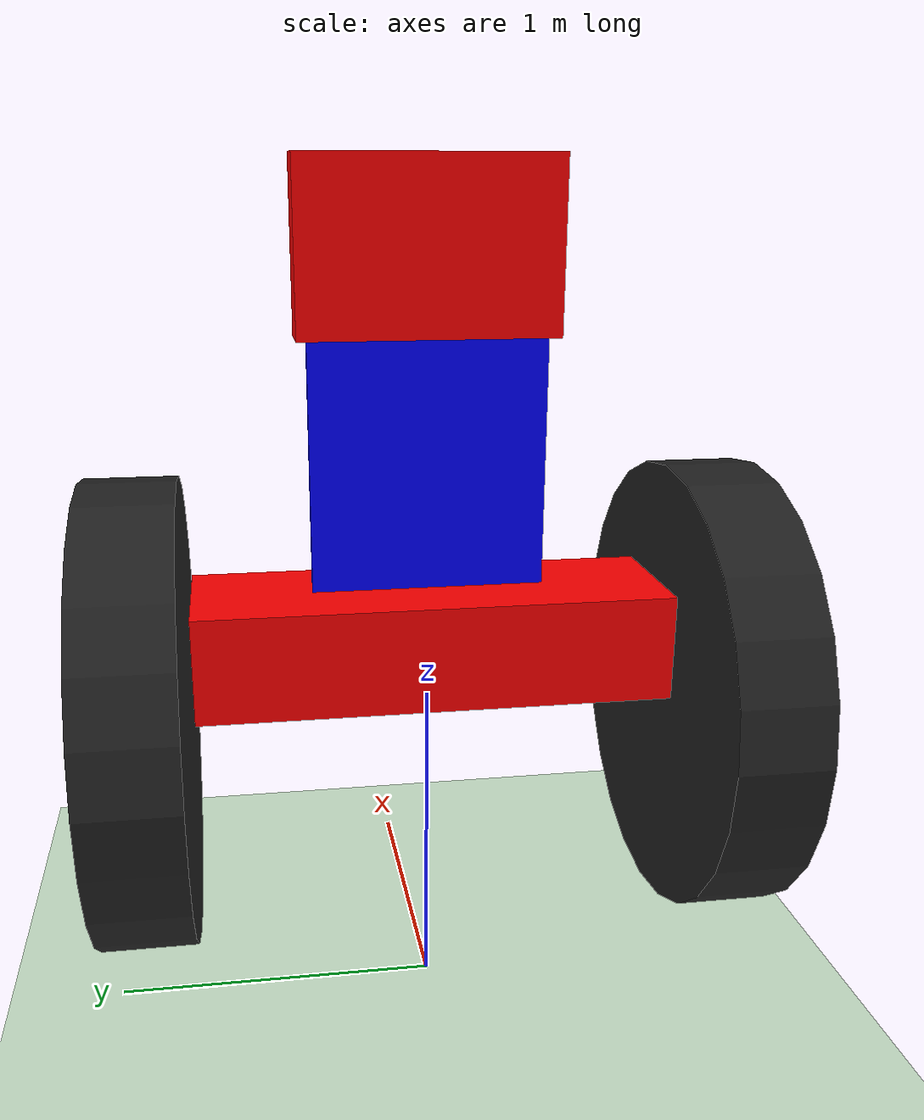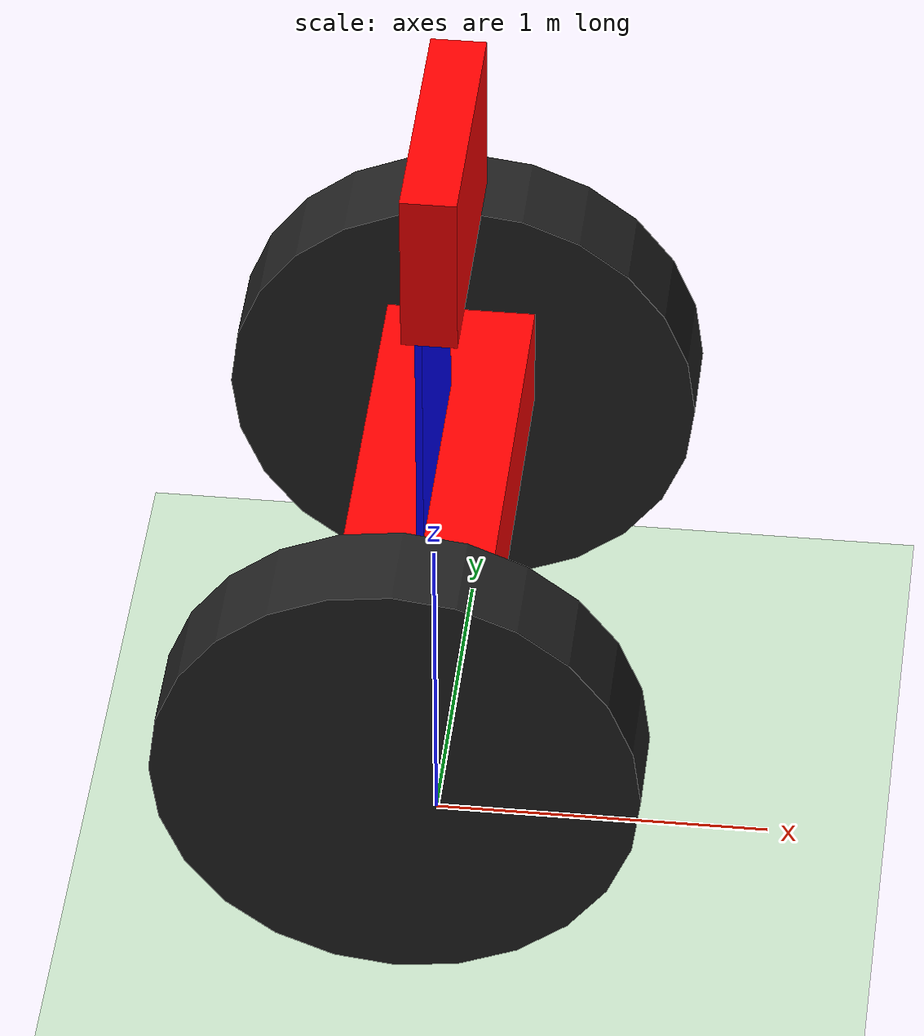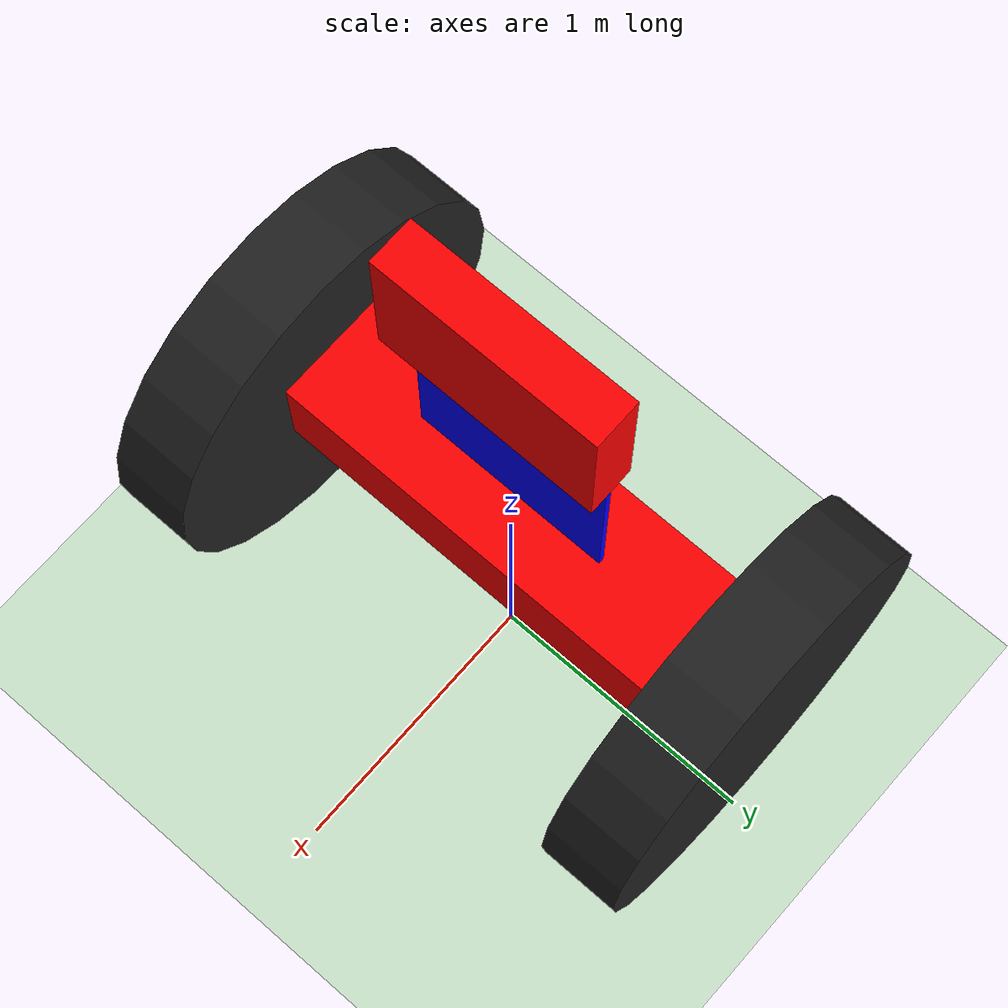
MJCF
<mujoco>
  <option timestep="0.002" />
  <asset>
    <texture builtin="gradient" height="100" rgb1="1 1 1" rgb2="0 0 0" type="skybox" width="100"/>
    <texture builtin="flat" height="1278" mark="cross" markrgb="1 1 1" name="texgeom" random="0.01" rgb1="0.8 0.6 0.4" rgb2="0.8 0.6 0.4" type="cube" width="127"/>
    <texture builtin="checker" height="100" name="texplane" rgb1="0 0 0" rgb2="0.8 0.8 0.8" type="2d" width="100"/>
    <material name="MatPlane" reflectance="0.5" shininess="1" specular="1" texrepeat="30 30" texture="texplane"/>
    <material name="geom" texture="texgeom" texuniform="true"/>
  </asset>
   <worldbody>
     <light cutoff="100" diffuse="1 1 1" dir="-0 0 -1.3" directional="true" exponent="1" pos="0 0 1.3" specular=".1 .1 .1"/>
     <geom conaffinity="1" condim="3" material="MatPlane" name="floor" pos="0 0 0" rgba="0.8 0.9 0.8 1" size="40 40 40" type="plane"/>
      <body name="mainframe" euler="0 0 0"  pos="0 0 1">
      	<joint type="free"/>
      	<geom type="box" size=".22 .71 .16" pos="0 0 0.19" rgba="1 0 0 1"/>    //Base Frame
        <geom type="box" size=".01 .35 .65" pos="0 0 0.93" rgba="0 0 1 1"/>        //PCB
        <geom type="box" size=".08 0.38 .25" pos="0.034 0 1.34" rgba="1 0 0 1"/> 	//Battery holder
        <site type="box" size="0.01 .01 .01" pos="0 0 0.1" rgba=".9 .1 .9 1" name="IMU"/>  //Sensor
        <body name="lwheel" pos="0 0 0">
      		  <joint axis="0 1 0" name="lmotor" pos="0 -0.87 0" range="-.52 1.05" damping="50" type="hinge"/>//stiffness="240" type="hinge"/>
      	  	<geom type="cylinder" euler="90 0 0" size=".7 .14 " pos="0 -0.87 0" rgba="0.128 0.128 0.128 1"/>
      	</body>
      	<body name="rwheel" pos="0 0 0">
		        <joint axis="0 -1 0" name="rmotor" pos="0 0.87 0" range="-.52 1.05" damping="50" type="hinge"/>//stiffness="240" type="hinge"/>
            <geom type="cylinder" euler="90 0 0" size=".7 .14 " pos="0 0.87 0" rgba="0.128 0.128 0.1280 1"/>
      	</body>
      </body>
    </worldbody>
    <sensor>
          <accelerometer name="Acc" site="IMU" />
          <gyro name="Gyro" site="IMU" />
          <jointpos name="Lencoder" joint="lmotor"/>
	        <jointpos name="Rencoder" joint="rmotor"/>//framequat name="Angle" objname="IMU" objtype="site" />
    </sensor>
    <actuator>
    	<motor  gear="30" joint="lmotor" name="almotor"/>// gaintype="user" gainrpm="1 0 0"name="almotor"/>
   	  <motor  gear="30" joint="rmotor" name="armotor"/>
    </actuator>
</mujoco>
